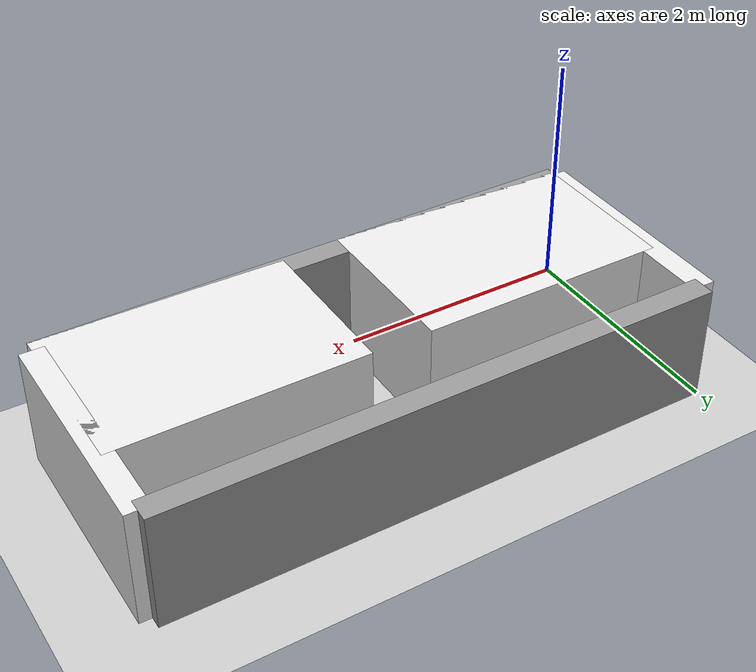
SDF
<?xml version="1.0"?>
<sdf version="1.6">
  <world name="default">

    <include>
      <uri>model://ground_plane</uri>
    </include>

    <include>
      <uri>model://sun</uri>
    </include>

    <scene>
      <shadows>false</shadows>
    </scene>

    <gui fullscreen='0'>
      <camera name='user_camera'>
        <pose frame=''>0.319654 -0.235002 9.29441 0 1.5138 0.009599</pose>
        <view_controller>orbit</view_controller>
        <projection_type>perspective</projection_type>
      </camera>
    </gui>

    <physics type="ode">
      <real_time_update_rate>1000.0</real_time_update_rate>
      <max_step_size>0.001</max_step_size>
      <real_time_factor>1</real_time_factor>
      <ode>
        <solver>
          <type>quick</type>
          <iters>150</iters>
          <precon_iters>0</precon_iters>
          <sor>1.400000</sor>
          <use_dynamic_moi_rescaling>1</use_dynamic_moi_rescaling>
        </solver>
        <constraints>
          <cfm>0.00001</cfm>
          <erp>0.2</erp>
          <contact_max_correcting_vel>2000.000000</contact_max_correcting_vel>
          <contact_surface_layer>0.01000</contact_surface_layer>
        </constraints>
      </ode>
    </physics>

    <model name="top_wall">
      <static>1</static>
      <include>
        <uri>model://long_wall</uri>
        <pose> 2.3368 1.905 0 0 0 0 </pose>
      </include>
    </model>

    <model name="bottom_wall">
      <static>1</static>
      <include>
        <uri>model://long_wall</uri>
        <pose> 2.3368 0 0 0 0 0 </pose>
      </include>
    </model>

     <model name="left_wall">
      <static>1</static>
      <include>
        <uri>model://short_wall</uri>
        <pose> 0 0.9525 0 0 0 0 </pose>
      </include>
    </model>

    <model name="right_wall">
      <static>1</static>
      <include>
        <uri>model://short_wall</uri>
        <pose> 4.6736 0.9525 0 0 0 0 </pose>
      </include>
    </model>

    <model name="block1">
      <static>1</static>
      <include>
        <uri>model://inlet_block_larger</uri>
        <pose> 1.0434 0.6025 0 0 0 0 </pose>
      </include>
    </model>

    <model name="block2">
      <static>1</static>
      <include>
        <uri>model://inlet_block_larger</uri>
        <pose> 3.6302 0.6025 0 0 0 0 </pose>
      </include>
    </model>

  </world>
</sdf>

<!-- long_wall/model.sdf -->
<sdf version="1.5">
  <model name="long_wall">
    <static>true</static>
    <link name="link">
      <collision name="collision">
        <geometry>
          <mesh>
            <uri>model://long_wall/meshes/long_wall.obj</uri>
            <scale>1 1 1</scale>
          </mesh>
        </geometry>
        <surface>
          <friction>
            <ode>
              <mu>100</mu>
              <mu2>50</mu2>
            </ode>
          </friction>
        </surface>
      </collision>
      <visual name="visual">
        <geometry>
          <mesh>
            <uri>model://long_wall/meshes/long_wall.obj</uri>
            <scale>1 1 1</scale>
          </mesh>
        </geometry>
        <material>
          <script>
            <uri>file://media/materials/scripts/gazebo.material</uri>
            <name>Gazebo/Grey</name>
          </script>
        </material>
      </visual>
    </link>
  </model>
</sdf>

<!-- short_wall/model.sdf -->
<sdf version="1.5">
  <model name="short_wall">
    <static>true</static>
    <link name="link">
      <collision name="collision">
        <geometry>
          <mesh>
            <uri>model://short_wall/meshes/short_wall.obj</uri>
            <scale>1 1 1</scale>
          </mesh>
        </geometry>
        <surface>
          <friction>
            <ode>
              <mu>100</mu>
              <mu2>50</mu2>
            </ode>
          </friction>
        </surface>
      </collision>
      <visual name="visual">
        <geometry>
          <mesh>
            <uri>model://short_wall/meshes/short_wall.obj</uri>
            <scale>1 1 1</scale>
          </mesh>
        </geometry>
        <material>
          <script>
            <uri>file://media/materials/scripts/gazebo.material</uri>
            <name>Gazebo/White</name>
          </script>
        </material>
      </visual>
    </link>
  </model>
</sdf>

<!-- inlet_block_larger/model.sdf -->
<sdf version="1.5">
  <model name="block">
    <static>true</static>
    <link name="link">
      <collision name="collision">
        <geometry>
          <mesh>
            <uri>model://inlet_block_larger/meshes/inlet_block.obj</uri>
            <scale>1 1 1</scale>
          </mesh>
        </geometry>
        <surface>
          <friction>
            <ode>
              <mu>100</mu>
              <mu2>50</mu2>
            </ode>
          </friction>
        </surface>
      </collision>
      <visual name="visual">
        <geometry>
          <mesh>
            <uri>model://inlet_block_larger/meshes/inlet_block.obj</uri>
            <scale>1 1 1</scale>
          </mesh>
        </geometry>
        <material>
          <script>
            <uri>file://media/materials/scripts/gazebo.material</uri>
            <name>Gazebo/White</name>
          </script>
        </material>
      </visual>
    </link>
  </model>
</sdf>
